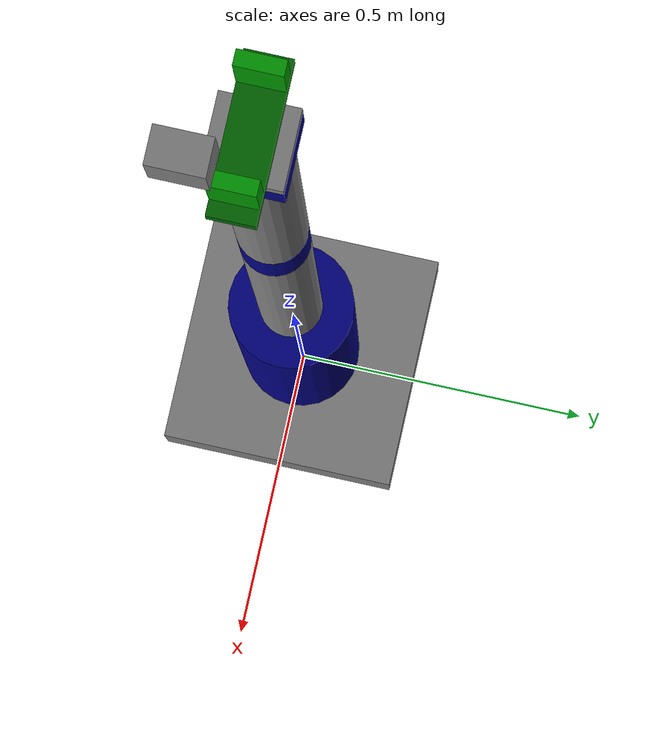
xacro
<?xml version="1.0"?>

<robot name="kernwald" xmlns:xacro="http://www.ros.org/wiki/xacro">
    <!-- Includes -->
    <xacro:include filename="common_properties.xacro" />
    <xacro:include filename="kernwald.ros2_control.xacro" />

    <xacro:arg name="use_gazebo" default="false" />

    <xacro:include filename="gripper.xacro" />
    <xacro:kernwald_ros2_control use_gazebo="$(arg use_gazebo)" />

    <!-- Base -->
    <link name="base_footprint" />

    <joint name="base_footprint_joint" type="fixed">
        <parent link="base_footprint" />
        <child link="base_link" />
        <origin xyz="0 0 0" rpy="0 0 0" />
    </joint>

    <link name="base_link">
        <xacro:box_inertial mass="100.0" x="0.4" y="0.4" z="0.1" origin_xyz="0 0 0.05" />
        <visual>
            <geometry>
                <box size="0.4 0.4 0.1" />
            </geometry>
            <origin xyz="0 0 0.05" rpy="0 0 0" />
            <material name="grey" />
        </visual>
        <collision>
            <geometry>
                <box size="0.4 0.4 0.1" />
            </geometry>
            <origin xyz="0 0 0.05" rpy="0 0 0" />
        </collision>
    </link>

    <!-- Joint 1 -->
    <joint name="joint_1" type="revolute">
        <parent link="base_link" />
        <child link="shoulder_link" />
        <origin xyz="0 0 0.1" rpy="0 0 0" />
        <axis xyz="0 0 1" />
        <limit effort="1000.0" velocity="1.0" lower="-3.14" upper="3.14" />
    </joint>

    <link name="shoulder_link">
        <xacro:cylinder_inertial mass="2.0" radius="0.1" length="0.5" origin_xyz="0 0 0.25" />
        <visual>
            <geometry>
                <cylinder length="0.5" radius="0.1" />
            </geometry>
            <origin xyz="0 0 0.25" rpy="0 0 0" />
            <material name="blue" />
        </visual>
        <collision>
            <geometry>
                <cylinder length="0.5" radius="0.1" />
            </geometry>
            <origin xyz="0 0 0.25" rpy="0 0 0" />
        </collision>
    </link>

    <!-- Joint 2 -->
    <joint name="joint_2" type="revolute">
        <parent link="shoulder_link" />
        <child link="arm_link" />
        <origin xyz="0 0 0.5" rpy="0 0 0" />
        <axis xyz="0 1 0" />
        <limit effort="1000.0" velocity="1.0" lower="0" upper="2.5" />
    </joint>

    <link name="arm_link">
        <xacro:cylinder_inertial mass="1.5" radius="0.05" length="0.6" origin_xyz="0 0 0.3" />
        <visual>
            <geometry>
                <cylinder length="0.6" radius="0.05" />
            </geometry>
            <origin xyz="0 0 0.3" rpy="0 0 0" />
            <material name="grey" />
        </visual>
        <collision>
            <geometry>
                <cylinder length="0.6" radius="0.05" />
            </geometry>
            <origin xyz="0 0 0.3" rpy="0 0 0" />
        </collision>
    </link>

    <!-- Joint 3 -->
    <joint name="joint_3" type="revolute">
        <parent link="arm_link" />
        <child link="elbow_link" />
        <origin xyz="0 0 0.6" rpy="0 0 0" />
        <axis xyz="0 1 0" />
        <limit effort="1000.0" velocity="1.0" lower="0" upper="2.5" />
    </joint>

    <link name="elbow_link">
        <xacro:cylinder_inertial mass="0.5" radius="0.05" length="0.1" origin_xyz="0 0 0.05" />
        <visual>
            <geometry>
                <cylinder length="0.1" radius="0.05" />
            </geometry>
            <origin xyz="0 0 0.05" rpy="0 0 0" />
            <material name="blue" />
        </visual>
        <collision>
            <geometry>
                <cylinder length="0.1" radius="0.05" />
            </geometry>
            <origin xyz="0 0 0.05" rpy="0 0 0" />
        </collision>
    </link>

    <!-- Joint 4 -->
    <joint name="joint_4" type="revolute">
        <parent link="elbow_link" />
        <child link="forearm_link" />
        <origin xyz="0 0 0.1" rpy="0 0 0" />
        <axis xyz="0 0 1" />
        <limit effort="1000.0" velocity="1.0" lower="-3.14" upper="3.14" />
    </joint>

    <link name="forearm_link">
        <xacro:cylinder_inertial mass="1.0" radius="0.05" length="0.5" origin_xyz="0 0 0.25" />
        <visual>
            <geometry>
                <cylinder length="0.5" radius="0.05" />
            </geometry>
            <origin xyz="0 0 0.25" rpy="0 0 0" />
            <material name="grey" />
        </visual>
        <collision>
            <geometry>
                <cylinder length="0.5" radius="0.05" />
            </geometry>
            <origin xyz="0 0 0.25" rpy="0 0 0" />
        </collision>
    </link>

    <!-- Joint 5 -->
    <joint name="joint_5" type="revolute">
        <parent link="forearm_link" />
        <child link="wrist_link" />
        <origin xyz="0 0 0.5" rpy="0 0 0" />
        <axis xyz="0 1 0" />
        <limit effort="1000.0" velocity="1.0" lower="-1.57" upper="1.57" />
    </joint>

    <link name="wrist_link">
        <xacro:box_inertial mass="0.4" x="0.1" y="0.1" z="0.05" origin_xyz="0 0 0.025" />
        <visual>
            <geometry>
                <box size="0.1 0.1 0.05" />
            </geometry>
            <origin xyz="0 0 0.025" rpy="0 0 0" />
            <material name="blue" />
        </visual>
        <collision>
            <geometry>
                <box size="0.1 0.1 0.05" />
            </geometry>
            <origin xyz="0 0 0.025" rpy="0 0 0" />
        </collision>
    </link>

    <!-- Joint 6 -->
    <joint name="joint_6" type="revolute">
        <parent link="wrist_link" />
        <child link="hand_link" />
        <origin xyz="0 0 0.05" rpy="0 0 0" />
        <axis xyz="0 0 1" />
        <limit effort="1000.0" velocity="1.0" lower="-3.14" upper="3.14" />
    </joint>

    <link name="hand_link">
        <xacro:box_inertial mass="0.2" x="0.1" y="0.1" z="0.02" origin_xyz="0 0 0.01" />
        <visual>
            <geometry>
                <box size="0.1 0.1 0.02" />
            </geometry>
            <origin xyz="0 0 0.01" rpy="0 0 0" />
            <material name="grey" />
        </visual>
        <collision>
            <geometry>
                <box size="0.1 0.1 0.02" />
            </geometry>
            <origin xyz="0 0 0.01" rpy="0 0 0" />
        </collision>
    </link>

    <!-- Hand tool -->
    <joint name="hand_tool_joint" type="fixed">
        <parent link="hand_link" />
        <child link="tool_link" />
        <origin xyz="0 0 0.02" rpy="0 0 0" />
    </joint>

    <link name="tool_link">
        <xacro:box_inertial mass="0.05" x="0.02" y="0.02" z="0.02" origin_xyz="0 0 0" />
    </link>

    <!-- Overhead depth camera -->
    <joint name="depth_camera_joint" type="fixed">
        <parent link="base_footprint" />
        <child link="depth_camera_link" />
        <origin xyz="0.15 0 2.5" rpy="0 1.5708 0" />
    </joint>

    <link name="depth_camera_link">
        <xacro:box_inertial mass="0.1" x="0.06" y="0.06" z="0.04" origin_xyz="0 0 0" />
        <visual>
            <geometry>
                <box size="0.06 0.06 0.04" />
            </geometry>
            <origin xyz="0 0 0" rpy="0 0 0" />
            <material name="grey" />
        </visual>
        <collision>
            <geometry>
                <box size="0.06 0.06 0.04" />
            </geometry>
            <origin xyz="0 0 0" rpy="0 0 0" />
        </collision>
    </link>

    <xacro:if value="$(arg use_gazebo)">
        <gazebo reference="depth_camera_link">
            <sensor name="rgbd_camera" type="rgbd_camera">
                <always_on>true</always_on>
                <update_rate>10</update_rate>
                <topic>rgbd_camera</topic>
                <frame_id>depth_camera_link</frame_id>

                <camera>
                    <horizontal_fov>1.9</horizontal_fov>
                    <optical_frame_id>depth_camera_link</optical_frame_id>
                    <image>
                        <width>424</width>
                        <height>240</height>
                        <format>R8G8B8</format>
                    </image>
                    <clip>
                        <near>0.2</near>
                        <far>6.0</far>
                    </clip>
                </camera>
            </sensor>
        </gazebo>
    </xacro:if>

    <xacro:if value="$(arg use_gazebo)">
        <!-- Gazebo -->
        <gazebo>
            <plugin filename="libgz_ros2_control-system.so"
                name="gz_ros2_control::GazeboSimROS2ControlPlugin">
                <parameters>$(find kernwald_bringup)/config/ros2_controllers.yaml</parameters>
            </plugin>
        </gazebo>
    </xacro:if>
</robot>

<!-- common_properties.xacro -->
<robot xmlns:xacro="http://www.ros.org/wiki/xacro">
    <!-- Materials -->
    <material name="grey">
        <color rgba="0.5 0.5 0.5 1" />
    </material>
    <material name="blue">
        <color rgba="0 0 0.5 1" />
    </material>
    <material name="dark_green">
        <color rgba="0 0.4 0 1" />
    </material>
    <material name="light_green">
        <color rgba="0. 0.6 0 1" />
    </material>

    <!-- Macroses -->
    <xacro:macro name="box_inertial" params="mass x y z origin_xyz">
        <inertial>
            <origin xyz="${origin_xyz}" rpy="0 0 0" />
            <mass value="${mass}" />
            <inertia
                ixx="${mass / 12.0 * (y * y + z * z)}"
                ixy="0.0"
                ixz="0.0"
                iyy="${mass / 12.0 * (x * x + z * z)}"
                iyz="0.0"
                izz="${mass / 12.0 * (x * x + y * y)}" />
        </inertial>
    </xacro:macro>

    <xacro:macro name="cylinder_inertial" params="mass radius length origin_xyz">
        <inertial>
            <origin xyz="${origin_xyz}" rpy="0 0 0" />
            <mass value="${mass}" />
            <inertia
                ixx="${mass / 12.0 * (3.0 * radius * radius + length * length)}"
                ixy="0.0"
                ixz="0.0"
                iyy="${mass / 12.0 * (3.0 * radius * radius + length * length)}"
                iyz="0.0"
                izz="${mass / 2.0 * radius * radius}" />
        </inertial>
    </xacro:macro>
</robot>

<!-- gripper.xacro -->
<robot xmlns:xacro="http://www.ros.org/wiki/xacro">
    <joint name="gripper_base_joint" type="fixed">
        <parent link="tool_link" />
        <child link="gripper_base_link" />
        <origin xyz="0 0 0" rpy="0 0 0" />
    </joint>

    <link name="gripper_base_link">
        <xacro:box_inertial mass="0.25" x="0.2" y="0.06" z="0.02" origin_xyz="0 0 0.01" />
        <visual>
            <geometry>
                <box size="0.2 0.06 0.02" />
            </geometry>
            <origin xyz="0 0 0.01" rpy="0 0 0" />
            <material name="dark_green" />
        </visual>
    </link>

    <!-- Right finger -->
    <joint name="right_finger_joint" type="prismatic">
        <parent link="gripper_base_link" />
        <child link="right_finger_link" />
        <origin xyz="0.07 0 0.02" rpy="0 0 0" />
        <axis xyz="-1 0 0" />
        <limit effort="1000.0" velocity="1.0" lower="-0.001" upper="0.06" />
    </joint>

    <link name="right_finger_link">
        <xacro:box_inertial mass="0.08" x="0.02" y="0.06" z="0.08" origin_xyz="0 0 0.04" />
        <visual>
            <geometry>
                <box size="0.02 0.06 0.08" />
            </geometry>
            <origin xyz="0 0 0.04" rpy="0 0 0" />
            <material name="light_green" />
        </visual>
        <collision>
            <geometry>
                <box size="0.02 0.06 0.08" />
            </geometry>
            <origin xyz="0 0 0.04" rpy="0 0 0" />
        </collision>
    </link>

    <!-- Left finger -->
    <joint name="left_finger_joint" type="prismatic">
        <parent link="gripper_base_link" />
        <child link="left_finger_link" />
        <origin xyz="-0.07 0 0.02" rpy="0 0 0" />
        <axis xyz="1 0 0" />
        <limit effort="1000.0" velocity="1.0" lower="-0.001" upper="0.06" />
    </joint>

    <link name="left_finger_link">
        <xacro:box_inertial mass="0.08" x="0.02" y="0.06" z="0.08" origin_xyz="0 0 0.04" />
        <visual>
            <geometry>
                <box size="0.02 0.06 0.08" />
            </geometry>
            <origin xyz="0 0 0.04" rpy="0 0 0" />
            <material name="light_green" />
        </visual>
        <collision>
            <geometry>
                <box size="0.02 0.06 0.08" />
            </geometry>
            <origin xyz="0 0 0.04" rpy="0 0 0" />
        </collision>
    </link>
</robot>
